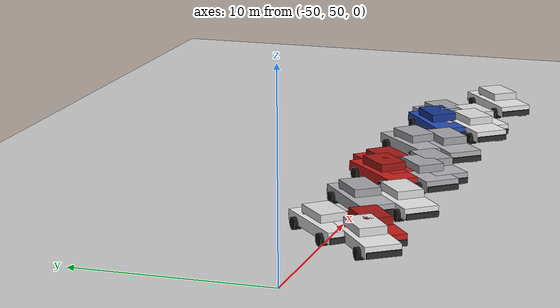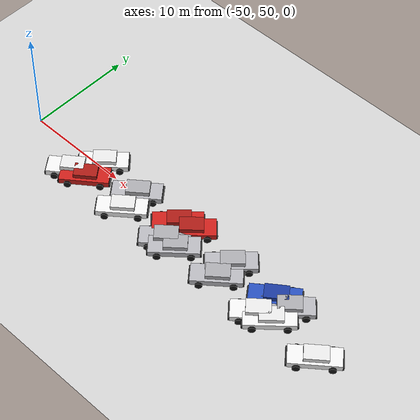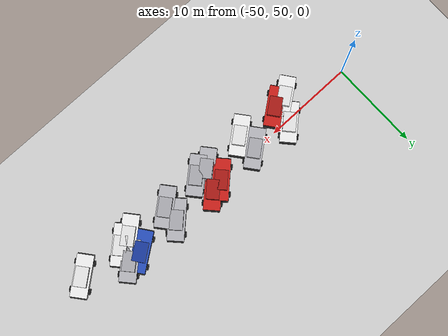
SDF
<sdf version="1.6">
 <world name="parking_lot">
  <model name="ground_plane">
   <static>true</static>
   <link name="link">
    <collision name="collision">
     <geometry><plane><normal>0 0 1</normal><size>400 300</size></plane></geometry>
     <surface><friction><ode><mu>0.8</mu><mu2>0.8</mu2></ode></friction></surface>
    </collision>
    <visual name="visual">
     <cast_shadows>false</cast_shadows>
     <geometry><plane><normal>0 0 1</normal><size>400 300</size></plane></geometry>
     <material>
      <script><uri>file://media/materials/scripts/gazebo.material</uri><name>Gazebo/Grey</name></script>
      <ambient>0.28 0.28 0.27 1</ambient>
      <diffuse>0.32 0.32 0.30 1</diffuse>
      <specular>0.01 0.01 0.01 1</specular>
     </material>
    </visual>
   </link>
  </model>
  <model name="car_0014">
   <static>true</static>
   <pose>-43.436 47.895 0 0 0 0.6395</pose>
   <link name="body">
    <visual name="body_vis">
     <pose>0 0 0.55 0 0 0</pose>
     <geometry><box><size>4.45 1.80 0.55</size></box></geometry>
     <material>
      <ambient>0.15 0.15 0.15 1</ambient>
      <diffuse>0.92 0.92 0.92 1</diffuse>
      <specular>0.4 0.4 0.4 1</specular>
     </material>
    </visual>
    <visual name="roof_vis">
     <pose>0.10 0 1.12 0 0 0</pose>
     <geometry><box><size>2.10 1.40 0.40</size></box></geometry>
     <material>
      <ambient>0.10 0.10 0.10 1</ambient>
      <diffuse>0.88 0.88 0.88 1</diffuse>
      <specular>0.5 0.5 0.5 1</specular>
     </material>
    </visual>
    <visual name="glass_f">
     <pose>1.02 0 0.95 0 -0.45 0</pose>
     <geometry><box><size>0.05 1.35 0.38</size></box></geometry>
     <material><diffuse>0.50 0.60 0.70 0.6</diffuse></material>
    </visual>
    <visual name="bumper_f">
     <pose>2.28 0 0.42 0 0 0</pose>
     <geometry><box><size>0.12 1.72 0.28</size></box></geometry>
     <material><diffuse>0.18 0.18 0.18 1</diffuse></material>
    </visual>
    <visual name="bumper_r">
     <pose>-2.28 0 0.42 0 0 0</pose>
     <geometry><box><size>0.12 1.72 0.28</size></box></geometry>
     <material><diffuse>0.18 0.18 0.18 1</diffuse></material>
    </visual>
    <visual name="wfl">
     <pose>1.45 0.85 0.32 1.5708 0 0</pose>
     <geometry><cylinder><radius>0.32</radius><length>0.44</length></cylinder></geometry>
     <material><diffuse>0.08 0.08 0.08 1</diffuse></material>
    </visual>
    <visual name="wfr">
     <pose>1.45 -0.85 0.32 1.5708 0 0</pose>
     <geometry><cylinder><radius>0.32</radius><length>0.44</length></cylinder></geometry>
     <material><diffuse>0.08 0.08 0.08 1</diffuse></material>
    </visual>
    <visual name="wrl">
     <pose>-1.45 0.85 0.32 1.5708 0 0</pose>
     <geometry><cylinder><radius>0.32</radius><length>0.44</length></cylinder></geometry>
     <material><diffuse>0.08 0.08 0.08 1</diffuse></material>
    </visual>
    <visual name="wrr">
     <pose>-1.45 -0.85 0.32 1.5708 0 0</pose>
     <geometry><cylinder><radius>0.32</radius><length>0.44</length></cylinder></geometry>
     <material><diffuse>0.08 0.08 0.08 1</diffuse></material>
    </visual>
    <collision name="col">
     <pose>0 0 0.55 0 0 0</pose>
     <geometry><box><size>4.45 1.80 1.30</size></box></geometry>
    </collision>
   </link>
  </model>
  <model name="car_0018">
   <static>true</static>
   <pose>-41.926 48.055 0 0 0 0.6522</pose>
   <link name="body">
    <visual name="body_vis">
     <pose>0 0 0.55 0 0 0</pose>
     <geometry><box><size>4.45 1.80 0.55</size></box></geometry>
     <material>
      <ambient>0.15 0.15 0.15 1</ambient>
      <diffuse>0.78 0.12 0.10 1</diffuse>
      <specular>0.4 0.4 0.4 1</specular>
     </material>
    </visual>
    <visual name="roof_vis">
     <pose>0.10 0 1.12 0 0 0</pose>
     <geometry><box><size>2.10 1.40 0.40</size></box></geometry>
     <material>
      <ambient>0.10 0.10 0.10 1</ambient>
      <diffuse>0.65 0.10 0.08 1</diffuse>
      <specular>0.5 0.5 0.5 1</specular>
     </material>
    </visual>
    <visual name="glass_f">
     <pose>1.02 0 0.95 0 -0.45 0</pose>
     <geometry><box><size>0.05 1.35 0.38</size></box></geometry>
     <material><diffuse>0.50 0.60 0.70 0.6</diffuse></material>
    </visual>
    <visual name="bumper_f">
     <pose>2.28 0 0.42 0 0 0</pose>
     <geometry><box><size>0.12 1.72 0.28</size></box></geometry>
     <material><diffuse>0.18 0.18 0.18 1</diffuse></material>
    </visual>
    <visual name="bumper_r">
     <pose>-2.28 0 0.42 0 0 0</pose>
     <geometry><box><size>0.12 1.72 0.28</size></box></geometry>
     <material><diffuse>0.18 0.18 0.18 1</diffuse></material>
    </visual>
    <visual name="wfl">
     <pose>1.45 0.85 0.32 1.5708 0 0</pose>
     <geometry><cylinder><radius>0.32</radius><length>0.44</length></cylinder></geometry>
     <material><diffuse>0.08 0.08 0.08 1</diffuse></material>
    </visual>
    <visual name="wfr">
     <pose>1.45 -0.85 0.32 1.5708 0 0</pose>
     <geometry><cylinder><radius>0.32</radius><length>0.44</length></cylinder></geometry>
     <material><diffuse>0.08 0.08 0.08 1</diffuse></material>
    </visual>
    <visual name="wrl">
     <pose>-1.45 0.85 0.32 1.5708 0 0</pose>
     <geometry><cylinder><radius>0.32</radius><length>0.44</length></cylinder></geometry>
     <material><diffuse>0.08 0.08 0.08 1</diffuse></material>
    </visual>
    <visual name="wrr">
     <pose>-1.45 -0.85 0.32 1.5708 0 0</pose>
     <geometry><cylinder><radius>0.32</radius><length>0.44</length></cylinder></geometry>
     <material><diffuse>0.08 0.08 0.08 1</diffuse></material>
    </visual>
    <collision name="col">
     <pose>0 0 0.55 0 0 0</pose>
     <geometry><box><size>4.45 1.80 1.30</size></box></geometry>
    </collision>
   </link>
  </model>
  <model name="car_0019">
   <static>true</static>
   <pose>-37.035 47.832 0 0 0 0.6813</pose>
   <link name="body">
    <visual name="body_vis">
     <pose>0 0 0.55 0 0 0</pose>
     <geometry><box><size>4.45 1.80 0.55</size></box></geometry>
     <material>
      <ambient>0.15 0.15 0.15 1</ambient>
      <diffuse>0.92 0.92 0.92 1</diffuse>
      <specular>0.4 0.4 0.4 1</specular>
     </material>
    </visual>
    <visual name="roof_vis">
     <pose>0.10 0 1.12 0 0 0</pose>
     <geometry><box><size>2.10 1.40 0.40</size></box></geometry>
     <material>
      <ambient>0.10 0.10 0.10 1</ambient>
      <diffuse>0.88 0.88 0.88 1</diffuse>
      <specular>0.5 0.5 0.5 1</specular>
     </material>
    </visual>
    <visual name="glass_f">
     <pose>1.02 0 0.95 0 -0.45 0</pose>
     <geometry><box><size>0.05 1.35 0.38</size></box></geometry>
     <material><diffuse>0.50 0.60 0.70 0.6</diffuse></material>
    </visual>
    <visual name="bumper_f">
     <pose>2.28 0 0.42 0 0 0</pose>
     <geometry><box><size>0.12 1.72 0.28</size></box></geometry>
     <material><diffuse>0.18 0.18 0.18 1</diffuse></material>
    </visual>
    <visual name="bumper_r">
     <pose>-2.28 0 0.42 0 0 0</pose>
     <geometry><box><size>0.12 1.72 0.28</size></box></geometry>
     <material><diffuse>0.18 0.18 0.18 1</diffuse></material>
    </visual>
    <visual name="wfl">
     <pose>1.45 0.85 0.32 1.5708 0 0</pose>
     <geometry><cylinder><radius>0.32</radius><length>0.44</length></cylinder></geometry>
     <material><diffuse>0.08 0.08 0.08 1</diffuse></material>
    </visual>
    <visual name="wfr">
     <pose>1.45 -0.85 0.32 1.5708 0 0</pose>
     <geometry><cylinder><radius>0.32</radius><length>0.44</length></cylinder></geometry>
     <material><diffuse>0.08 0.08 0.08 1</diffuse></material>
    </visual>
    <visual name="wrl">
     <pose>-1.45 0.85 0.32 1.5708 0 0</pose>
     <geometry><cylinder><radius>0.32</radius><length>0.44</length></cylinder></geometry>
     <material><diffuse>0.08 0.08 0.08 1</diffuse></material>
    </visual>
    <visual name="wrr">
     <pose>-1.45 -0.85 0.32 1.5708 0 0</pose>
     <geometry><cylinder><radius>0.32</radius><length>0.44</length></cylinder></geometry>
     <material><diffuse>0.08 0.08 0.08 1</diffuse></material>
    </visual>
    <collision name="col">
     <pose>0 0 0.55 0 0 0</pose>
     <geometry><box><size>4.45 1.80 1.30</size></box></geometry>
    </collision>
   </link>
  </model>
  <model name="car_0020">
   <static>true</static>
   <pose>-32.055 48.070 0 0 0 0.7061</pose>
   <link name="body">
    <visual name="body_vis">
     <pose>0 0 0.55 0 0 0</pose>
     <geometry><box><size>4.45 1.80 0.55</size></box></geometry>
     <material>
      <ambient>0.15 0.15 0.15 1</ambient>
      <diffuse>0.70 0.70 0.72 1</diffuse>
      <specular>0.4 0.4 0.4 1</specular>
     </material>
    </visual>
    <visual name="roof_vis">
     <pose>0.10 0 1.12 0 0 0</pose>
     <geometry><box><size>2.10 1.40 0.40</size></box></geometry>
     <material>
      <ambient>0.10 0.10 0.10 1</ambient>
      <diffuse>0.65 0.65 0.67 1</diffuse>
      <specular>0.5 0.5 0.5 1</specular>
     </material>
    </visual>
    <visual name="glass_f">
     <pose>1.02 0 0.95 0 -0.45 0</pose>
     <geometry><box><size>0.05 1.35 0.38</size></box></geometry>
     <material><diffuse>0.50 0.60 0.70 0.6</diffuse></material>
    </visual>
    <visual name="bumper_f">
     <pose>2.28 0 0.42 0 0 0</pose>
     <geometry><box><size>0.12 1.72 0.28</size></box></geometry>
     <material><diffuse>0.18 0.18 0.18 1</diffuse></material>
    </visual>
    <visual name="bumper_r">
     <pose>-2.28 0 0.42 0 0 0</pose>
     <geometry><box><size>0.12 1.72 0.28</size></box></geometry>
     <material><diffuse>0.18 0.18 0.18 1</diffuse></material>
    </visual>
    <visual name="wfl">
     <pose>1.45 0.85 0.32 1.5708 0 0</pose>
     <geometry><cylinder><radius>0.32</radius><length>0.44</length></cylinder></geometry>
     <material><diffuse>0.08 0.08 0.08 1</diffuse></material>
    </visual>
    <visual name="wfr">
     <pose>1.45 -0.85 0.32 1.5708 0 0</pose>
     <geometry><cylinder><radius>0.32</radius><length>0.44</length></cylinder></geometry>
     <material><diffuse>0.08 0.08 0.08 1</diffuse></material>
    </visual>
    <visual name="wrl">
     <pose>-1.45 0.85 0.32 1.5708 0 0</pose>
     <geometry><cylinder><radius>0.32</radius><length>0.44</length></cylinder></geometry>
     <material><diffuse>0.08 0.08 0.08 1</diffuse></material>
    </visual>
    <visual name="wrr">
     <pose>-1.45 -0.85 0.32 1.5708 0 0</pose>
     <geometry><cylinder><radius>0.32</radius><length>0.44</length></cylinder></geometry>
     <material><diffuse>0.08 0.08 0.08 1</diffuse></material>
    </visual>
    <collision name="col">
     <pose>0 0 0.55 0 0 0</pose>
     <geometry><box><size>4.45 1.80 1.30</size></box></geometry>
    </collision>
   </link>
  </model>
  <model name="car_0021">
   <static>true</static>
   <pose>-41.908 50.321 0 0 0 0.7367</pose>
   <link name="body">
    <visual name="body_vis">
     <pose>0 0 0.55 0 0 0</pose>
     <geometry><box><size>4.45 1.80 0.55</size></box></geometry>
     <material>
      <ambient>0.15 0.15 0.15 1</ambient>
      <diffuse>0.92 0.92 0.92 1</diffuse>
      <specular>0.4 0.4 0.4 1</specular>
     </material>
    </visual>
    <visual name="roof_vis">
     <pose>0.10 0 1.12 0 0 0</pose>
     <geometry><box><size>2.10 1.40 0.40</size></box></geometry>
     <material>
      <ambient>0.10 0.10 0.10 1</ambient>
      <diffuse>0.88 0.88 0.88 1</diffuse>
      <specular>0.5 0.5 0.5 1</specular>
     </material>
    </visual>
    <visual name="glass_f">
     <pose>1.02 0 0.95 0 -0.45 0</pose>
     <geometry><box><size>0.05 1.35 0.38</size></box></geometry>
     <material><diffuse>0.50 0.60 0.70 0.6</diffuse></material>
    </visual>
    <visual name="bumper_f">
     <pose>2.28 0 0.42 0 0 0</pose>
     <geometry><box><size>0.12 1.72 0.28</size></box></geometry>
     <material><diffuse>0.18 0.18 0.18 1</diffuse></material>
    </visual>
    <visual name="bumper_r">
     <pose>-2.28 0 0.42 0 0 0</pose>
     <geometry><box><size>0.12 1.72 0.28</size></box></geometry>
     <material><diffuse>0.18 0.18 0.18 1</diffuse></material>
    </visual>
    <visual name="wfl">
     <pose>1.45 0.85 0.32 1.5708 0 0</pose>
     <geometry><cylinder><radius>0.32</radius><length>0.44</length></cylinder></geometry>
     <material><diffuse>0.08 0.08 0.08 1</diffuse></material>
    </visual>
    <visual name="wfr">
     <pose>1.45 -0.85 0.32 1.5708 0 0</pose>
     <geometry><cylinder><radius>0.32</radius><length>0.44</length></cylinder></geometry>
     <material><diffuse>0.08 0.08 0.08 1</diffuse></material>
    </visual>
    <visual name="wrl">
     <pose>-1.45 0.85 0.32 1.5708 0 0</pose>
     <geometry><cylinder><radius>0.32</radius><length>0.44</length></cylinder></geometry>
     <material><diffuse>0.08 0.08 0.08 1</diffuse></material>
    </visual>
    <visual name="wrr">
     <pose>-1.45 -0.85 0.32 1.5708 0 0</pose>
     <geometry><cylinder><radius>0.32</radius><length>0.44</length></cylinder></geometry>
     <material><diffuse>0.08 0.08 0.08 1</diffuse></material>
    </visual>
    <collision name="col">
     <pose>0 0 0.55 0 0 0</pose>
     <geometry><box><size>4.45 1.80 1.30</size></box></geometry>
    </collision>
   </link>
  </model>
  <model name="car_0022">
   <static>true</static>
   <pose>-37.285 49.916 0 0 0 0.6724</pose>
   <link name="body">
    <visual name="body_vis">
     <pose>0 0 0.55 0 0 0</pose>
     <geometry><box><size>4.45 1.80 0.55</size></box></geometry>
     <material>
      <ambient>0.15 0.15 0.15 1</ambient>
      <diffuse>0.70 0.70 0.72 1</diffuse>
      <specular>0.4 0.4 0.4 1</specular>
     </material>
    </visual>
    <visual name="roof_vis">
     <pose>0.10 0 1.12 0 0 0</pose>
     <geometry><box><size>2.10 1.40 0.40</size></box></geometry>
     <material>
      <ambient>0.10 0.10 0.10 1</ambient>
      <diffuse>0.65 0.65 0.67 1</diffuse>
      <specular>0.5 0.5 0.5 1</specular>
     </material>
    </visual>
    <visual name="glass_f">
     <pose>1.02 0 0.95 0 -0.45 0</pose>
     <geometry><box><size>0.05 1.35 0.38</size></box></geometry>
     <material><diffuse>0.50 0.60 0.70 0.6</diffuse></material>
    </visual>
    <visual name="bumper_f">
     <pose>2.28 0 0.42 0 0 0</pose>
     <geometry><box><size>0.12 1.72 0.28</size></box></geometry>
     <material><diffuse>0.18 0.18 0.18 1</diffuse></material>
    </visual>
    <visual name="bumper_r">
     <pose>-2.28 0 0.42 0 0 0</pose>
     <geometry><box><size>0.12 1.72 0.28</size></box></geometry>
     <material><diffuse>0.18 0.18 0.18 1</diffuse></material>
    </visual>
    <visual name="wfl">
     <pose>1.45 0.85 0.32 1.5708 0 0</pose>
     <geometry><cylinder><radius>0.32</radius><length>0.44</length></cylinder></geometry>
     <material><diffuse>0.08 0.08 0.08 1</diffuse></material>
    </visual>
    <visual name="wfr">
     <pose>1.45 -0.85 0.32 1.5708 0 0</pose>
     <geometry><cylinder><radius>0.32</radius><length>0.44</length></cylinder></geometry>
     <material><diffuse>0.08 0.08 0.08 1</diffuse></material>
    </visual>
    <visual name="wrl">
     <pose>-1.45 0.85 0.32 1.5708 0 0</pose>
     <geometry><cylinder><radius>0.32</radius><length>0.44</length></cylinder></geometry>
     <material><diffuse>0.08 0.08 0.08 1</diffuse></material>
    </visual>
    <visual name="wrr">
     <pose>-1.45 -0.85 0.32 1.5708 0 0</pose>
     <geometry><cylinder><radius>0.32</radius><length>0.44</length></cylinder></geometry>
     <material><diffuse>0.08 0.08 0.08 1</diffuse></material>
    </visual>
    <collision name="col">
     <pose>0 0 0.55 0 0 0</pose>
     <geometry><box><size>4.45 1.80 1.30</size></box></geometry>
    </collision>
   </link>
  </model>
  <model name="car_0023">
   <static>true</static>
   <pose>-32.416 50.005 0 0 0 0.7600</pose>
   <link name="body">
    <visual name="body_vis">
     <pose>0 0 0.55 0 0 0</pose>
     <geometry><box><size>4.45 1.80 0.55</size></box></geometry>
     <material>
      <ambient>0.15 0.15 0.15 1</ambient>
      <diffuse>0.78 0.12 0.10 1</diffuse>
      <specular>0.4 0.4 0.4 1</specular>
     </material>
    </visual>
    <visual name="roof_vis">
     <pose>0.10 0 1.12 0 0 0</pose>
     <geometry><box><size>2.10 1.40 0.40</size></box></geometry>
     <material>
      <ambient>0.10 0.10 0.10 1</ambient>
      <diffuse>0.65 0.10 0.08 1</diffuse>
      <specular>0.5 0.5 0.5 1</specular>
     </material>
    </visual>
    <visual name="glass_f">
     <pose>1.02 0 0.95 0 -0.45 0</pose>
     <geometry><box><size>0.05 1.35 0.38</size></box></geometry>
     <material><diffuse>0.50 0.60 0.70 0.6</diffuse></material>
    </visual>
    <visual name="bumper_f">
     <pose>2.28 0 0.42 0 0 0</pose>
     <geometry><box><size>0.12 1.72 0.28</size></box></geometry>
     <material><diffuse>0.18 0.18 0.18 1</diffuse></material>
    </visual>
    <visual name="bumper_r">
     <pose>-2.28 0 0.42 0 0 0</pose>
     <geometry><box><size>0.12 1.72 0.28</size></box></geometry>
     <material><diffuse>0.18 0.18 0.18 1</diffuse></material>
    </visual>
    <visual name="wfl">
     <pose>1.45 0.85 0.32 1.5708 0 0</pose>
     <geometry><cylinder><radius>0.32</radius><length>0.44</length></cylinder></geometry>
     <material><diffuse>0.08 0.08 0.08 1</diffuse></material>
    </visual>
    <visual name="wfr">
     <pose>1.45 -0.85 0.32 1.5708 0 0</pose>
     <geometry><cylinder><radius>0.32</radius><length>0.44</length></cylinder></geometry>
     <material><diffuse>0.08 0.08 0.08 1</diffuse></material>
    </visual>
    <visual name="wrl">
     <pose>-1.45 0.85 0.32 1.5708 0 0</pose>
     <geometry><cylinder><radius>0.32</radius><length>0.44</length></cylinder></geometry>
     <material><diffuse>0.08 0.08 0.08 1</diffuse></material>
    </visual>
    <visual name="wrr">
     <pose>-1.45 -0.85 0.32 1.5708 0 0</pose>
     <geometry><cylinder><radius>0.32</radius><length>0.44</length></cylinder></geometry>
     <material><diffuse>0.08 0.08 0.08 1</diffuse></material>
    </visual>
    <collision name="col">
     <pose>0 0 0.55 0 0 0</pose>
     <geometry><box><size>4.45 1.80 1.30</size></box></geometry>
    </collision>
   </link>
  </model>
  <model name="car_0024">
   <static>true</static>
   <pose>-30.812 47.907 0 0 0 0.7198</pose>
   <link name="body">
    <visual name="body_vis">
     <pose>0 0 0.55 0 0 0</pose>
     <geometry><box><size>4.45 1.80 0.55</size></box></geometry>
     <material>
      <ambient>0.15 0.15 0.15 1</ambient>
      <diffuse>0.70 0.70 0.72 1</diffuse>
      <specular>0.4 0.4 0.4 1</specular>
     </material>
    </visual>
    <visual name="roof_vis">
     <pose>0.10 0 1.12 0 0 0</pose>
     <geometry><box><size>2.10 1.40 0.40</size></box></geometry>
     <material>
      <ambient>0.10 0.10 0.10 1</ambient>
      <diffuse>0.65 0.65 0.67 1</diffuse>
      <specular>0.5 0.5 0.5 1</specular>
     </material>
    </visual>
    <visual name="glass_f">
     <pose>1.02 0 0.95 0 -0.45 0</pose>
     <geometry><box><size>0.05 1.35 0.38</size></box></geometry>
     <material><diffuse>0.50 0.60 0.70 0.6</diffuse></material>
    </visual>
    <visual name="bumper_f">
     <pose>2.28 0 0.42 0 0 0</pose>
     <geometry><box><size>0.12 1.72 0.28</size></box></geometry>
     <material><diffuse>0.18 0.18 0.18 1</diffuse></material>
    </visual>
    <visual name="bumper_r">
     <pose>-2.28 0 0.42 0 0 0</pose>
     <geometry><box><size>0.12 1.72 0.28</size></box></geometry>
     <material><diffuse>0.18 0.18 0.18 1</diffuse></material>
    </visual>
    <visual name="wfl">
     <pose>1.45 0.85 0.32 1.5708 0 0</pose>
     <geometry><cylinder><radius>0.32</radius><length>0.44</length></cylinder></geometry>
     <material><diffuse>0.08 0.08 0.08 1</diffuse></material>
    </visual>
    <visual name="wfr">
     <pose>1.45 -0.85 0.32 1.5708 0 0</pose>
     <geometry><cylinder><radius>0.32</radius><length>0.44</length></cylinder></geometry>
     <material><diffuse>0.08 0.08 0.08 1</diffuse></material>
    </visual>
    <visual name="wrl">
     <pose>-1.45 0.85 0.32 1.5708 0 0</pose>
     <geometry><cylinder><radius>0.32</radius><length>0.44</length></cylinder></geometry>
     <material><diffuse>0.08 0.08 0.08 1</diffuse></material>
    </visual>
    <visual name="wrr">
     <pose>-1.45 -0.85 0.32 1.5708 0 0</pose>
     <geometry><cylinder><radius>0.32</radius><length>0.44</length></cylinder></geometry>
     <material><diffuse>0.08 0.08 0.08 1</diffuse></material>
    </visual>
    <collision name="col">
     <pose>0 0 0.55 0 0 0</pose>
     <geometry><box><size>4.45 1.80 1.30</size></box></geometry>
    </collision>
   </link>
  </model>
  <model name="car_0025">
   <static>true</static>
   <pose>-26.202 48.207 0 0 0 0.6924</pose>
   <link name="body">
    <visual name="body_vis">
     <pose>0 0 0.55 0 0 0</pose>
     <geometry><box><size>4.45 1.80 0.55</size></box></geometry>
     <material>
      <ambient>0.15 0.15 0.15 1</ambient>
      <diffuse>0.70 0.70 0.72 1</diffuse>
      <specular>0.4 0.4 0.4 1</specular>
     </material>
    </visual>
    <visual name="roof_vis">
     <pose>0.10 0 1.12 0 0 0</pose>
     <geometry><box><size>2.10 1.40 0.40</size></box></geometry>
     <material>
      <ambient>0.10 0.10 0.10 1</ambient>
      <diffuse>0.65 0.65 0.67 1</diffuse>
      <specular>0.5 0.5 0.5 1</specular>
     </material>
    </visual>
    <visual name="glass_f">
     <pose>1.02 0 0.95 0 -0.45 0</pose>
     <geometry><box><size>0.05 1.35 0.38</size></box></geometry>
     <material><diffuse>0.50 0.60 0.70 0.6</diffuse></material>
    </visual>
    <visual name="bumper_f">
     <pose>2.28 0 0.42 0 0 0</pose>
     <geometry><box><size>0.12 1.72 0.28</size></box></geometry>
     <material><diffuse>0.18 0.18 0.18 1</diffuse></material>
    </visual>
    <visual name="bumper_r">
     <pose>-2.28 0 0.42 0 0 0</pose>
     <geometry><box><size>0.12 1.72 0.28</size></box></geometry>
     <material><diffuse>0.18 0.18 0.18 1</diffuse></material>
    </visual>
    <visual name="wfl">
     <pose>1.45 0.85 0.32 1.5708 0 0</pose>
     <geometry><cylinder><radius>0.32</radius><length>0.44</length></cylinder></geometry>
     <material><diffuse>0.08 0.08 0.08 1</diffuse></material>
    </visual>
    <visual name="wfr">
     <pose>1.45 -0.85 0.32 1.5708 0 0</pose>
     <geometry><cylinder><radius>0.32</radius><length>0.44</length></cylinder></geometry>
     <material><diffuse>0.08 0.08 0.08 1</diffuse></material>
    </visual>
    <visual name="wrl">
     <pose>-1.45 0.85 0.32 1.5708 0 0</pose>
     <geometry><cylinder><radius>0.32</radius><length>0.44</length></cylinder></geometry>
     <material><diffuse>0.08 0.08 0.08 1</diffuse></material>
    </visual>
    <visual name="wrr">
     <pose>-1.45 -0.85 0.32 1.5708 0 0</pose>
     <geometry><cylinder><radius>0.32</radius><length>0.44</length></cylinder></geometry>
     <material><diffuse>0.08 0.08 0.08 1</diffuse></material>
    </visual>
    <collision name="col">
     <pose>0 0 0.55 0 0 0</pose>
     <geometry><box><size>4.45 1.80 1.30</size></box></geometry>
    </collision>
   </link>
  </model>
  <model name="car_0026">
   <static>true</static>
   <pose>-21.418 47.873 0 0 0 0.7067</pose>
   <link name="body">
    <visual name="body_vis">
     <pose>0 0 0.55 0 0 0</pose>
     <geometry><box><size>4.45 1.80 0.55</size></box></geometry>
     <material>
      <ambient>0.15 0.15 0.15 1</ambient>
      <diffuse>0.92 0.92 0.92 1</diffuse>
      <specular>0.4 0.4 0.4 1</specular>
     </material>
    </visual>
    <visual name="roof_vis">
     <pose>0.10 0 1.12 0 0 0</pose>
     <geometry><box><size>2.10 1.40 0.40</size></box></geometry>
     <material>
      <ambient>0.10 0.10 0.10 1</ambient>
      <diffuse>0.88 0.88 0.88 1</diffuse>
      <specular>0.5 0.5 0.5 1</specular>
     </material>
    </visual>
    <visual name="glass_f">
     <pose>1.02 0 0.95 0 -0.45 0</pose>
     <geometry><box><size>0.05 1.35 0.38</size></box></geometry>
     <material><diffuse>0.50 0.60 0.70 0.6</diffuse></material>
    </visual>
    <visual name="bumper_f">
     <pose>2.28 0 0.42 0 0 0</pose>
     <geometry><box><size>0.12 1.72 0.28</size></box></geometry>
     <material><diffuse>0.18 0.18 0.18 1</diffuse></material>
    </visual>
    <visual name="bumper_r">
     <pose>-2.28 0 0.42 0 0 0</pose>
     <geometry><box><size>0.12 1.72 0.28</size></box></geometry>
     <material><diffuse>0.18 0.18 0.18 1</diffuse></material>
    </visual>
    <visual name="wfl">
     <pose>1.45 0.85 0.32 1.5708 0 0</pose>
     <geometry><cylinder><radius>0.32</radius><length>0.44</length></cylinder></geometry>
     <material><diffuse>0.08 0.08 0.08 1</diffuse></material>
    </visual>
    <visual name="wfr">
     <pose>1.45 -0.85 0.32 1.5708 0 0</pose>
     <geometry><cylinder><radius>0.32</radius><length>0.44</length></cylinder></geometry>
     <material><diffuse>0.08 0.08 0.08 1</diffuse></material>
    </visual>
    <visual name="wrl">
     <pose>-1.45 0.85 0.32 1.5708 0 0</pose>
     <geometry><cylinder><radius>0.32</radius><length>0.44</length></cylinder></geometry>
     <material><diffuse>0.08 0.08 0.08 1</diffuse></material>
    </visual>
    <visual name="wrr">
     <pose>-1.45 -0.85 0.32 1.5708 0 0</pose>
     <geometry><cylinder><radius>0.32</radius><length>0.44</length></cylinder></geometry>
     <material><diffuse>0.08 0.08 0.08 1</diffuse></material>
    </visual>
    <collision name="col">
     <pose>0 0 0.55 0 0 0</pose>
     <geometry><box><size>4.45 1.80 1.30</size></box></geometry>
    </collision>
   </link>
  </model>
  <model name="car_0027">
   <static>true</static>
   <pose>-31.119 50.192 0 0 0 0.7537</pose>
   <link name="body">
    <visual name="body_vis">
     <pose>0 0 0.55 0 0 0</pose>
     <geometry><box><size>4.45 1.80 0.55</size></box></geometry>
     <material>
      <ambient>0.15 0.15 0.15 1</ambient>
      <diffuse>0.78 0.12 0.10 1</diffuse>
      <specular>0.4 0.4 0.4 1</specular>
     </material>
    </visual>
    <visual name="roof_vis">
     <pose>0.10 0 1.12 0 0 0</pose>
     <geometry><box><size>2.10 1.40 0.40</size></box></geometry>
     <material>
      <ambient>0.10 0.10 0.10 1</ambient>
      <diffuse>0.65 0.10 0.08 1</diffuse>
      <specular>0.5 0.5 0.5 1</specular>
     </material>
    </visual>
    <visual name="glass_f">
     <pose>1.02 0 0.95 0 -0.45 0</pose>
     <geometry><box><size>0.05 1.35 0.38</size></box></geometry>
     <material><diffuse>0.50 0.60 0.70 0.6</diffuse></material>
    </visual>
    <visual name="bumper_f">
     <pose>2.28 0 0.42 0 0 0</pose>
     <geometry><box><size>0.12 1.72 0.28</size></box></geometry>
     <material><diffuse>0.18 0.18 0.18 1</diffuse></material>
    </visual>
    <visual name="bumper_r">
     <pose>-2.28 0 0.42 0 0 0</pose>
     <geometry><box><size>0.12 1.72 0.28</size></box></geometry>
     <material><diffuse>0.18 0.18 0.18 1</diffuse></material>
    </visual>
    <visual name="wfl">
     <pose>1.45 0.85 0.32 1.5708 0 0</pose>
     <geometry><cylinder><radius>0.32</radius><length>0.44</length></cylinder></geometry>
     <material><diffuse>0.08 0.08 0.08 1</diffuse></material>
    </visual>
    <visual name="wfr">
     <pose>1.45 -0.85 0.32 1.5708 0 0</pose>
     <geometry><cylinder><radius>0.32</radius><length>0.44</length></cylinder></geometry>
     <material><diffuse>0.08 0.08 0.08 1</diffuse></material>
    </visual>
    <visual name="wrl">
     <pose>-1.45 0.85 0.32 1.5708 0 0</pose>
     <geometry><cylinder><radius>0.32</radius><length>0.44</length></cylinder></geometry>
     <material><diffuse>0.08 0.08 0.08 1</diffuse></material>
    </visual>
    <visual name="wrr">
     <pose>-1.45 -0.85 0.32 1.5708 0 0</pose>
     <geometry><cylinder><radius>0.32</radius><length>0.44</length></cylinder></geometry>
     <material><diffuse>0.08 0.08 0.08 1</diffuse></material>
    </visual>
    <collision name="col">
     <pose>0 0 0.55 0 0 0</pose>
     <geometry><box><size>4.45 1.80 1.30</size></box></geometry>
    </collision>
   </link>
  </model>
  <model name="car_0028">
   <static>true</static>
   <pose>-26.200 50.010 0 0 0 0.7676</pose>
   <link name="body">
    <visual name="body_vis">
     <pose>0 0 0.55 0 0 0</pose>
     <geometry><box><size>4.45 1.80 0.55</size></box></geometry>
     <material>
      <ambient>0.15 0.15 0.15 1</ambient>
      <diffuse>0.70 0.70 0.72 1</diffuse>
      <specular>0.4 0.4 0.4 1</specular>
     </material>
    </visual>
    <visual name="roof_vis">
     <pose>0.10 0 1.12 0 0 0</pose>
     <geometry><box><size>2.10 1.40 0.40</size></box></geometry>
     <material>
      <ambient>0.10 0.10 0.10 1</ambient>
      <diffuse>0.65 0.65 0.67 1</diffuse>
      <specular>0.5 0.5 0.5 1</specular>
     </material>
    </visual>
    <visual name="glass_f">
     <pose>1.02 0 0.95 0 -0.45 0</pose>
     <geometry><box><size>0.05 1.35 0.38</size></box></geometry>
     <material><diffuse>0.50 0.60 0.70 0.6</diffuse></material>
    </visual>
    <visual name="bumper_f">
     <pose>2.28 0 0.42 0 0 0</pose>
     <geometry><box><size>0.12 1.72 0.28</size></box></geometry>
     <material><diffuse>0.18 0.18 0.18 1</diffuse></material>
    </visual>
    <visual name="bumper_r">
     <pose>-2.28 0 0.42 0 0 0</pose>
     <geometry><box><size>0.12 1.72 0.28</size></box></geometry>
     <material><diffuse>0.18 0.18 0.18 1</diffuse></material>
    </visual>
    <visual name="wfl">
     <pose>1.45 0.85 0.32 1.5708 0 0</pose>
     <geometry><cylinder><radius>0.32</radius><length>0.44</length></cylinder></geometry>
     <material><diffuse>0.08 0.08 0.08 1</diffuse></material>
    </visual>
    <visual name="wfr">
     <pose>1.45 -0.85 0.32 1.5708 0 0</pose>
     <geometry><cylinder><radius>0.32</radius><length>0.44</length></cylinder></geometry>
     <material><diffuse>0.08 0.08 0.08 1</diffuse></material>
    </visual>
    <visual name="wrl">
     <pose>-1.45 0.85 0.32 1.5708 0 0</pose>
     <geometry><cylinder><radius>0.32</radius><length>0.44</length></cylinder></geometry>
     <material><diffuse>0.08 0.08 0.08 1</diffuse></material>
    </visual>
    <visual name="wrr">
     <pose>-1.45 -0.85 0.32 1.5708 0 0</pose>
     <geometry><cylinder><radius>0.32</radius><length>0.44</length></cylinder></geometry>
     <material><diffuse>0.08 0.08 0.08 1</diffuse></material>
    </visual>
    <collision name="col">
     <pose>0 0 0.55 0 0 0</pose>
     <geometry><box><size>4.45 1.80 1.30</size></box></geometry>
    </collision>
   </link>
  </model>
  <model name="car_0029">
   <static>true</static>
   <pose>-21.295 49.945 0 0 0 0.6349</pose>
   <link name="body">
    <visual name="body_vis">
     <pose>0 0 0.55 0 0 0</pose>
     <geometry><box><size>4.45 1.80 0.55</size></box></geometry>
     <material>
      <ambient>0.15 0.15 0.15 1</ambient>
      <diffuse>0.15 0.30 0.72 1</diffuse>
      <specular>0.4 0.4 0.4 1</specular>
     </material>
    </visual>
    <visual name="roof_vis">
     <pose>0.10 0 1.12 0 0 0</pose>
     <geometry><box><size>2.10 1.40 0.40</size></box></geometry>
     <material>
      <ambient>0.10 0.10 0.10 1</ambient>
      <diffuse>0.10 0.22 0.60 1</diffuse>
      <specular>0.5 0.5 0.5 1</specular>
     </material>
    </visual>
    <visual name="glass_f">
     <pose>1.02 0 0.95 0 -0.45 0</pose>
     <geometry><box><size>0.05 1.35 0.38</size></box></geometry>
     <material><diffuse>0.50 0.60 0.70 0.6</diffuse></material>
    </visual>
    <visual name="bumper_f">
     <pose>2.28 0 0.42 0 0 0</pose>
     <geometry><box><size>0.12 1.72 0.28</size></box></geometry>
     <material><diffuse>0.18 0.18 0.18 1</diffuse></material>
    </visual>
    <visual name="bumper_r">
     <pose>-2.28 0 0.42 0 0 0</pose>
     <geometry><box><size>0.12 1.72 0.28</size></box></geometry>
     <material><diffuse>0.18 0.18 0.18 1</diffuse></material>
    </visual>
    <visual name="wfl">
     <pose>1.45 0.85 0.32 1.5708 0 0</pose>
     <geometry><cylinder><radius>0.32</radius><length>0.44</length></cylinder></geometry>
     <material><diffuse>0.08 0.08 0.08 1</diffuse></material>
    </visual>
    <visual name="wfr">
     <pose>1.45 -0.85 0.32 1.5708 0 0</pose>
     <geometry><cylinder><radius>0.32</radius><length>0.44</length></cylinder></geometry>
     <material><diffuse>0.08 0.08 0.08 1</diffuse></material>
    </visual>
    <visual name="wrl">
     <pose>-1.45 0.85 0.32 1.5708 0 0</pose>
     <geometry><cylinder><radius>0.32</radius><length>0.44</length></cylinder></geometry>
     <material><diffuse>0.08 0.08 0.08 1</diffuse></material>
    </visual>
    <visual name="wrr">
     <pose>-1.45 -0.85 0.32 1.5708 0 0</pose>
     <geometry><cylinder><radius>0.32</radius><length>0.44</length></cylinder></geometry>
     <material><diffuse>0.08 0.08 0.08 1</diffuse></material>
    </visual>
    <collision name="col">
     <pose>0 0 0.55 0 0 0</pose>
     <geometry><box><size>4.45 1.80 1.30</size></box></geometry>
    </collision>
   </link>
  </model>
  <model name="car_0030">
   <static>true</static>
   <pose>-20.195 48.064 0 0 0 0.7389</pose>
   <link name="body">
    <visual name="body_vis">
     <pose>0 0 0.55 0 0 0</pose>
     <geometry><box><size>4.45 1.80 0.55</size></box></geometry>
     <material>
      <ambient>0.15 0.15 0.15 1</ambient>
      <diffuse>0.92 0.92 0.92 1</diffuse>
      <specular>0.4 0.4 0.4 1</specular>
     </material>
    </visual>
    <visual name="roof_vis">
     <pose>0.10 0 1.12 0 0 0</pose>
     <geometry><box><size>2.10 1.40 0.40</size></box></geometry>
     <material>
      <ambient>0.10 0.10 0.10 1</ambient>
      <diffuse>0.88 0.88 0.88 1</diffuse>
      <specular>0.5 0.5 0.5 1</specular>
     </material>
    </visual>
    <visual name="glass_f">
     <pose>1.02 0 0.95 0 -0.45 0</pose>
     <geometry><box><size>0.05 1.35 0.38</size></box></geometry>
     <material><diffuse>0.50 0.60 0.70 0.6</diffuse></material>
    </visual>
    <visual name="bumper_f">
     <pose>2.28 0 0.42 0 0 0</pose>
     <geometry><box><size>0.12 1.72 0.28</size></box></geometry>
     <material><diffuse>0.18 0.18 0.18 1</diffuse></material>
    </visual>
    <visual name="bumper_r">
     <pose>-2.28 0 0.42 0 0 0</pose>
     <geometry><box><size>0.12 1.72 0.28</size></box></geometry>
     <material><diffuse>0.18 0.18 0.18 1</diffuse></material>
    </visual>
    <visual name="wfl">
     <pose>1.45 0.85 0.32 1.5708 0 0</pose>
     <geometry><cylinder><radius>0.32</radius><length>0.44</length></cylinder></geometry>
     <material><diffuse>0.08 0.08 0.08 1</diffuse></material>
    </visual>
    <visual name="wfr">
     <pose>1.45 -0.85 0.32 1.5708 0 0</pose>
     <geometry><cylinder><radius>0.32</radius><length>0.44</length></cylinder></geometry>
     <material><diffuse>0.08 0.08 0.08 1</diffuse></material>
    </visual>
    <visual name="wrl">
     <pose>-1.45 0.85 0.32 1.5708 0 0</pose>
     <geometry><cylinder><radius>0.32</radius><length>0.44</length></cylinder></geometry>
     <material><diffuse>0.08 0.08 0.08 1</diffuse></material>
    </visual>
    <visual name="wrr">
     <pose>-1.45 -0.85 0.32 1.5708 0 0</pose>
     <geometry><cylinder><radius>0.32</radius><length>0.44</length></cylinder></geometry>
     <material><diffuse>0.08 0.08 0.08 1</diffuse></material>
    </visual>
    <collision name="col">
     <pose>0 0 0.55 0 0 0</pose>
     <geometry><box><size>4.45 1.80 1.30</size></box></geometry>
    </collision>
   </link>
  </model>
  <model name="car_0031">
   <static>true</static>
   <pose>-15.189 47.782 0 0 0 0.6816</pose>
   <link name="body">
    <visual name="body_vis">
     <pose>0 0 0.55 0 0 0</pose>
     <geometry><box><size>4.45 1.80 0.55</size></box></geometry>
     <material>
      <ambient>0.15 0.15 0.15 1</ambient>
      <diffuse>0.92 0.92 0.92 1</diffuse>
      <specular>0.4 0.4 0.4 1</specular>
     </material>
    </visual>
    <visual name="roof_vis">
     <pose>0.10 0 1.12 0 0 0</pose>
     <geometry><box><size>2.10 1.40 0.40</size></box></geometry>
     <material>
      <ambient>0.10 0.10 0.10 1</ambient>
      <diffuse>0.88 0.88 0.88 1</diffuse>
      <specular>0.5 0.5 0.5 1</specular>
     </material>
    </visual>
    <visual name="glass_f">
     <pose>1.02 0 0.95 0 -0.45 0</pose>
     <geometry><box><size>0.05 1.35 0.38</size></box></geometry>
     <material><diffuse>0.50 0.60 0.70 0.6</diffuse></material>
    </visual>
    <visual name="bumper_f">
     <pose>2.28 0 0.42 0 0 0</pose>
     <geometry><box><size>0.12 1.72 0.28</size></box></geometry>
     <material><diffuse>0.18 0.18 0.18 1</diffuse></material>
    </visual>
    <visual name="bumper_r">
     <pose>-2.28 0 0.42 0 0 0</pose>
     <geometry><box><size>0.12 1.72 0.28</size></box></geometry>
     <material><diffuse>0.18 0.18 0.18 1</diffuse></material>
    </visual>
    <visual name="wfl">
     <pose>1.45 0.85 0.32 1.5708 0 0</pose>
     <geometry><cylinder><radius>0.32</radius><length>0.44</length></cylinder></geometry>
     <material><diffuse>0.08 0.08 0.08 1</diffuse></material>
    </visual>
    <visual name="wfr">
     <pose>1.45 -0.85 0.32 1.5708 0 0</pose>
     <geometry><cylinder><radius>0.32</radius><length>0.44</length></cylinder></geometry>
     <material><diffuse>0.08 0.08 0.08 1</diffuse></material>
    </visual>
    <visual name="wrl">
     <pose>-1.45 0.85 0.32 1.5708 0 0</pose>
     <geometry><cylinder><radius>0.32</radius><length>0.44</length></cylinder></geometry>
     <material><diffuse>0.08 0.08 0.08 1</diffuse></material>
    </visual>
    <visual name="wrr">
     <pose>-1.45 -0.85 0.32 1.5708 0 0</pose>
     <geometry><cylinder><radius>0.32</radius><length>0.44</length></cylinder></geometry>
     <material><diffuse>0.08 0.08 0.08 1</diffuse></material>
    </visual>
    <collision name="col">
     <pose>0 0 0.55 0 0 0</pose>
     <geometry><box><size>4.45 1.80 1.30</size></box></geometry>
    </collision>
   </link>
  </model>
  <model name="car_0033">
   <static>true</static>
   <pose>-19.820 49.906 0 0 0 0.7290</pose>
   <link name="body">
    <visual name="body_vis">
     <pose>0 0 0.55 0 0 0</pose>
     <geometry><box><size>4.45 1.80 0.55</size></box></geometry>
     <material>
      <ambient>0.15 0.15 0.15 1</ambient>
      <diffuse>0.70 0.70 0.72 1</diffuse>
      <specular>0.4 0.4 0.4 1</specular>
     </material>
    </visual>
    <visual name="roof_vis">
     <pose>0.10 0 1.12 0 0 0</pose>
     <geometry><box><size>2.10 1.40 0.40</size></box></geometry>
     <material>
      <ambient>0.10 0.10 0.10 1</ambient>
      <diffuse>0.65 0.65 0.67 1</diffuse>
      <specular>0.5 0.5 0.5 1</specular>
     </material>
    </visual>
    <visual name="glass_f">
     <pose>1.02 0 0.95 0 -0.45 0</pose>
     <geometry><box><size>0.05 1.35 0.38</size></box></geometry>
     <material><diffuse>0.50 0.60 0.70 0.6</diffuse></material>
    </visual>
    <visual name="bumper_f">
     <pose>2.28 0 0.42 0 0 0</pose>
     <geometry><box><size>0.12 1.72 0.28</size></box></geometry>
     <material><diffuse>0.18 0.18 0.18 1</diffuse></material>
    </visual>
    <visual name="bumper_r">
     <pose>-2.28 0 0.42 0 0 0</pose>
     <geometry><box><size>0.12 1.72 0.28</size></box></geometry>
     <material><diffuse>0.18 0.18 0.18 1</diffuse></material>
    </visual>
    <visual name="wfl">
     <pose>1.45 0.85 0.32 1.5708 0 0</pose>
     <geometry><cylinder><radius>0.32</radius><length>0.44</length></cylinder></geometry>
     <material><diffuse>0.08 0.08 0.08 1</diffuse></material>
    </visual>
    <visual name="wfr">
     <pose>1.45 -0.85 0.32 1.5708 0 0</pose>
     <geometry><cylinder><radius>0.32</radius><length>0.44</length></cylinder></geometry>
     <material><diffuse>0.08 0.08 0.08 1</diffuse></material>
    </visual>
    <visual name="wrl">
     <pose>-1.45 0.85 0.32 1.5708 0 0</pose>
     <geometry><cylinder><radius>0.32</radius><length>0.44</length></cylinder></geometry>
     <material><diffuse>0.08 0.08 0.08 1</diffuse></material>
    </visual>
    <visual name="wrr">
     <pose>-1.45 -0.85 0.32 1.5708 0 0</pose>
     <geometry><cylinder><radius>0.32</radius><length>0.44</length></cylinder></geometry>
     <material><diffuse>0.08 0.08 0.08 1</diffuse></material>
    </visual>
    <collision name="col">
     <pose>0 0 0.55 0 0 0</pose>
     <geometry><box><size>4.45 1.80 1.30</size></box></geometry>
    </collision>
   </link>
  </model>
 </world>
</sdf>
